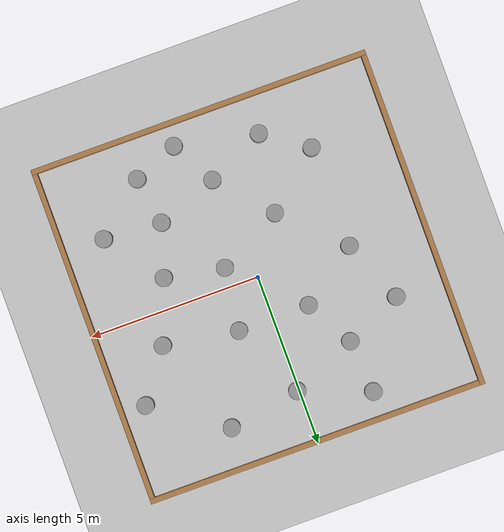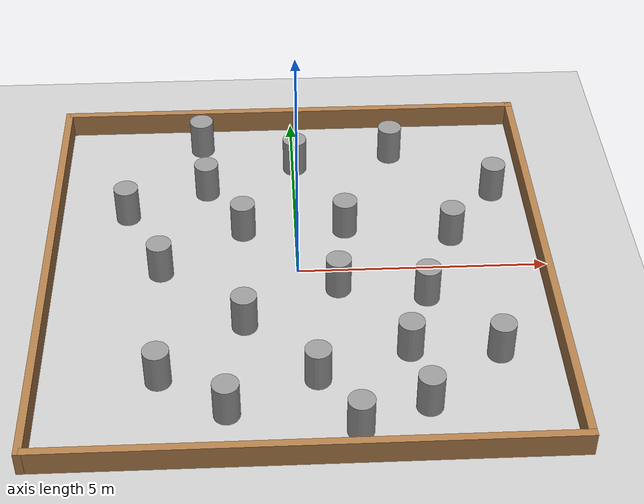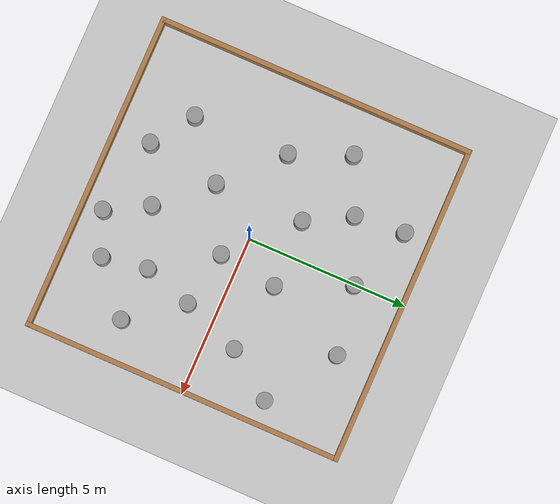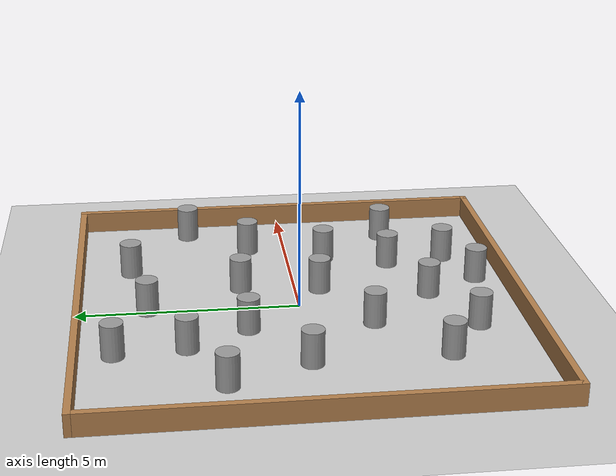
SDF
<sdf version="1.7">
 <world name="default">
  <light name="sun" type="directional">
   <pose>0 0 10 0 -0 0</pose>
   <diffuse>0.8 0.8 0.8 1</diffuse>
   <specular>0.2 0.2 0.2 1</specular>
   <attenuation>
    <range>1000</range>
    <constant>0.9</constant>
    <linear>0.01</linear>
    <quadratic>0.001</quadratic>
   </attenuation>
   <direction>-0.5 0.1 -0.9</direction>
   <spot><inner_angle>0</inner_angle><outer_angle>0</outer_angle><falloff>0</falloff></spot>
  </light>
  <model name="ground_plane">
   <static>1</static>
   <link name="link">
    <collision name="collision">
     <geometry><plane><normal>0 0 1</normal><size>100 100</size></plane></geometry>
     <surface>
      <contact><collide_bitmask>65535</collide_bitmask></contact>
      <friction><ode><mu>100</mu><mu2>50</mu2></ode></friction>
     </surface>
    </collision>
    <visual name="visual">
     <cast_shadows>0</cast_shadows>
     <geometry><plane><normal>0 0 1</normal><size>100 100</size></plane></geometry>
     <material>
      <script><uri>file://media/materials/scripts/gazebo.material</uri><name>Gazebo/Grey</name></script>
     </material>
    </visual>
   </link>
  </model>
  <gravity>0 0 -9.8</gravity>
  <magnetic_field>6e-06 2.3e-05 -4.2e-05</magnetic_field>
  <atmosphere type="adiabatic"/>
  <physics type="ode">
   <max_step_size>0.001</max_step_size>
   <real_time_factor>1</real_time_factor>
   <real_time_update_rate>1000</real_time_update_rate>
  </physics>
  <scene><ambient>0.4 0.4 0.4 1</ambient><background>0.7 0.7 0.7 1</background><shadows>1</shadows></scene>
  <audio><device>default</device></audio>
  <spherical_coordinates>
   <surface_model>EARTH_WGS84</surface_model>
   <latitude_deg>0</latitude_deg>
   <longitude_deg>0</longitude_deg>
   <elevation>0</elevation>
   <heading_deg>0</heading_deg>
  </spherical_coordinates>
  <model name="wall_square10x10">
   <pose>0 1.25 0 0 -0 0</pose>
   <link name="Wall_10">
    <collision name="Wall_10_Collision">
     <geometry><box><size>10 0.15 0.5</size></box></geometry>
     <pose>0 0 0.25 0 -0 0</pose>
    </collision>
    <visual name="Wall_10_Visual">
     <pose>0 0 0.25 0 -0 0</pose>
     <geometry><box><size>10 0.15 0.5</size></box></geometry>
     <material>
      <script><uri>file://media/materials/scripts/gazebo.material</uri><name>Gazebo/Wood</name></script>
      <ambient>1 1 1 1</ambient>
     </material>
     <meta><layer>0</layer></meta>
    </visual>
    <pose>0 -6.183 0 0 -0 3.14159</pose>
   </link>
   <link name="Wall_6">
    <collision name="Wall_6_Collision">
     <geometry><box><size>10 0.15 0.5</size></box></geometry>
     <pose>0 0 0.25 0 -0 0</pose>
    </collision>
    <visual name="Wall_6_Visual">
     <pose>0 0 0.25 0 -0 0</pose>
     <geometry><box><size>10 0.15 0.5</size></box></geometry>
     <material>
      <script><uri>file://media/materials/scripts/gazebo.material</uri><name>Gazebo/Wood</name></script>
      <ambient>1 1 1 1</ambient>
     </material>
     <meta><layer>0</layer></meta>
    </visual>
    <pose>-4.925 -1.258 0 0 -0 -1.5708</pose>
   </link>
   <link name="Wall_8">
    <collision name="Wall_8_Collision">
     <geometry><box><size>10 0.15 0.5</size></box></geometry>
     <pose>0 0 0.25 0 -0 0</pose>
    </collision>
    <visual name="Wall_8_Visual">
     <pose>0 0 0.25 0 -0 0</pose>
     <geometry><box><size>10 0.15 0.5</size></box></geometry>
     <material>
      <script><uri>file://media/materials/scripts/gazebo.material</uri><name>Gazebo/Wood</name></script>
      <ambient>1 1 1 1</ambient>
     </material>
     <meta><layer>0</layer></meta>
    </visual>
    <pose>0 3.667 0 0 -0 0</pose>
   </link>
   <link name="Wall_9">
    <collision name="Wall_9_Collision">
     <geometry><box><size>10 0.15 0.5</size></box></geometry>
     <pose>0 0 0.25 0 -0 0</pose>
    </collision>
    <visual name="Wall_9_Visual">
     <pose>0 0 0.25 0 -0 0</pose>
     <geometry><box><size>10 0.15 0.5</size></box></geometry>
     <material>
      <script><uri>file://media/materials/scripts/gazebo.material</uri><name>Gazebo/Wood</name></script>
      <ambient>1 1 1 1</ambient>
     </material>
     <meta><layer>0</layer></meta>
    </visual>
    <pose>4.925 -1.258 0 0 -0 -1.5708</pose>
   </link>
   <static>1</static>
  </model>
  <model name="unit_cylinder">
   <link name="link">
    <inertial>
     <mass>1</mass>
     <inertia><ixx>0.145833</ixx><ixy>0</ixy><ixz>0</ixz><iyy>0.145833</iyy><iyz>0</iyz><izz>0.125</izz></inertia>
    </inertial>
    <pose>0 -0 -0.1 0 -0 0</pose>
    <visual name="visual">
     <geometry><cylinder><radius>0.25</radius><length>0.8</length></cylinder></geometry>
     <material>
      <script><name>Gazebo/Grey</name><uri>file://media/materials/scripts/gazebo.material</uri></script>
      <shader type="pixel"><normal_map>__default__</normal_map></shader>
      <ambient>0.1 0.1 0.1 1</ambient>
      <diffuse>0.7 0.7 0.7 1</diffuse>
      <specular>0.01 0.01 0.01 1</specular>
      <emissive>0 0 0 1</emissive>
     </material>
    </visual>
    <collision name="collision">
     <geometry><cylinder><radius>0.25</radius><length>0.8</length></cylinder></geometry>
     <surface>
      <friction>
       <ode><mu>1</mu><mu2>1</mu2><fdir1>0 0 0</fdir1><slip1>0</slip1><slip2>0</slip2></ode>
       <torsional>
        <coefficient>1</coefficient>
        <patch_radius>0</patch_radius>
        <surface_radius>0</surface_radius>
        <use_patch_radius>1</use_patch_radius>
        <ode><slip>0</slip></ode>
       </torsional>
      </friction>
      <bounce><restitution_coefficient>0</restitution_coefficient><threshold>1e+06</threshold></bounce>
      <contact>
       <collide_without_contact>0</collide_without_contact>
       <collide_without_contact_bitmask>1</collide_without_contact_bitmask>
       <collide_bitmask>1</collide_bitmask>
       <ode>
        <soft_cfm>0</soft_cfm>
        <soft_erp>0.2</soft_erp>
        <kp>1e+13</kp>
        <kd>1</kd>
        <max_vel>0.01</max_vel>
        <min_depth>0</min_depth>
       </ode>
       <bullet>
        <split_impulse>1</split_impulse>
        <split_impulse_penetration_threshold>-0.01</split_impulse_penetration_threshold>
        <soft_cfm>0</soft_cfm>
        <soft_erp>0.2</soft_erp>
        <kp>1e+13</kp>
        <kd>1</kd>
       </bullet>
      </contact>
     </surface>
    </collision>
   </link>
   <static>0</static>
   <pose>-1.06223 -1.53507 0.499998 1e-06 1e-06 0</pose>
  </model>
  <model name="unit_cylinder_0">
   <link name="link">
    <inertial>
     <mass>1</mass>
     <inertia><ixx>0.145833</ixx><ixy>0</ixy><ixz>0</ixz><iyy>0.145833</iyy><iyz>0</iyz><izz>0.125</izz></inertia>
    </inertial>
    <pose>0 -0 -0.1 0 -0 0</pose>
    <visual name="visual">
     <geometry><cylinder><radius>0.25</radius><length>0.8</length></cylinder></geometry>
     <material>
      <script><name>Gazebo/Grey</name><uri>file://media/materials/scripts/gazebo.material</uri></script>
      <shader type="pixel"><normal_map>__default__</normal_map></shader>
      <ambient>0.1 0.1 0.1 1</ambient>
      <diffuse>0.7 0.7 0.7 1</diffuse>
      <specular>0.01 0.01 0.01 1</specular>
      <emissive>0 0 0 1</emissive>
     </material>
    </visual>
    <collision name="collision">
     <geometry><cylinder><radius>0.25</radius><length>0.8</length></cylinder></geometry>
     <surface>
      <friction>
       <ode><mu>1</mu><mu2>1</mu2><fdir1>0 0 0</fdir1><slip1>0</slip1><slip2>0</slip2></ode>
       <torsional>
        <coefficient>1</coefficient>
        <patch_radius>0</patch_radius>
        <surface_radius>0</surface_radius>
        <use_patch_radius>1</use_patch_radius>
        <ode><slip>0</slip></ode>
       </torsional>
      </friction>
      <bounce><restitution_coefficient>0</restitution_coefficient><threshold>1e+06</threshold></bounce>
      <contact>
       <collide_without_contact>0</collide_without_contact>
       <collide_without_contact_bitmask>1</collide_without_contact_bitmask>
       <collide_bitmask>1</collide_bitmask>
       <ode>
        <soft_cfm>0</soft_cfm>
        <soft_erp>0.2</soft_erp>
        <kp>1e+13</kp>
        <kd>1</kd>
        <max_vel>0.01</max_vel>
        <min_depth>0</min_depth>
       </ode>
       <bullet>
        <split_impulse>1</split_impulse>
        <split_impulse_penetration_threshold>-0.01</split_impulse_penetration_threshold>
        <soft_cfm>0</soft_cfm>
        <soft_erp>0.2</soft_erp>
        <kp>1e+13</kp>
        <kd>1</kd>
       </bullet>
      </contact>
     </surface>
    </collision>
   </link>
   <static>0</static>
   <pose>0.276075 -3.01056 0.499991 0 -0 0</pose>
  </model>
  <model name="unit_cylinder_1">
   <link name="link">
    <inertial>
     <mass>1</mass>
     <inertia><ixx>0.145833</ixx><ixy>0</ixy><ixz>0</ixz><iyy>0.145833</iyy><iyz>0</iyz><izz>0.125</izz></inertia>
    </inertial>
    <pose>0 -0 -0.1 0 -0 0</pose>
    <visual name="visual">
     <geometry><cylinder><radius>0.25</radius><length>0.8</length></cylinder></geometry>
     <material>
      <script><name>Gazebo/Grey</name><uri>file://media/materials/scripts/gazebo.material</uri></script>
      <shader type="pixel"><normal_map>__default__</normal_map></shader>
      <ambient>0.1 0.1 0.1 1</ambient>
      <diffuse>0.7 0.7 0.7 1</diffuse>
      <specular>0.01 0.01 0.01 1</specular>
      <emissive>0 0 0 1</emissive>
     </material>
    </visual>
    <collision name="collision">
     <geometry><cylinder><radius>0.25</radius><length>0.8</length></cylinder></geometry>
     <surface>
      <friction>
       <ode><mu>1</mu><mu2>1</mu2><fdir1>0 0 0</fdir1><slip1>0</slip1><slip2>0</slip2></ode>
       <torsional>
        <coefficient>1</coefficient>
        <patch_radius>0</patch_radius>
        <surface_radius>0</surface_radius>
        <use_patch_radius>1</use_patch_radius>
        <ode><slip>0</slip></ode>
       </torsional>
      </friction>
      <bounce><restitution_coefficient>0</restitution_coefficient><threshold>1e+06</threshold></bounce>
      <contact>
       <collide_without_contact>0</collide_without_contact>
       <collide_without_contact_bitmask>1</collide_without_contact_bitmask>
       <collide_bitmask>1</collide_bitmask>
       <ode>
        <soft_cfm>0</soft_cfm>
        <soft_erp>0.2</soft_erp>
        <kp>1e+13</kp>
        <kd>1</kd>
        <max_vel>0.01</max_vel>
        <min_depth>0</min_depth>
       </ode>
       <bullet>
        <split_impulse>1</split_impulse>
        <split_impulse_penetration_threshold>-0.01</split_impulse_penetration_threshold>
        <soft_cfm>0</soft_cfm>
        <soft_erp>0.2</soft_erp>
        <kp>1e+13</kp>
        <kd>1</kd>
       </bullet>
      </contact>
     </surface>
    </collision>
   </link>
   <static>0</static>
   <pose>-2.6561 -2.91617 0.5 0 -0 0</pose>
  </model>
  <model name="unit_cylinder_2">
   <link name="link">
    <inertial>
     <mass>1</mass>
     <inertia><ixx>0.145833</ixx><ixy>0</ixy><ixz>0</ixz><iyy>0.145833</iyy><iyz>0</iyz><izz>0.125</izz></inertia>
    </inertial>
    <pose>0 -0 -0.1 0 -0 0</pose>
    <visual name="visual">
     <geometry><cylinder><radius>0.25</radius><length>0.8</length></cylinder></geometry>
     <material>
      <script><name>Gazebo/Grey</name><uri>file://media/materials/scripts/gazebo.material</uri></script>
      <shader type="pixel"><normal_map>__default__</normal_map></shader>
      <ambient>0.1 0.1 0.1 1</ambient>
      <diffuse>0.7 0.7 0.7 1</diffuse>
      <specular>0.01 0.01 0.01 1</specular>
      <emissive>0 0 0 1</emissive>
     </material>
    </visual>
    <collision name="collision">
     <geometry><cylinder><radius>0.25</radius><length>0.8</length></cylinder></geometry>
     <surface>
      <friction>
       <ode><mu>1</mu><mu2>1</mu2><fdir1>0 0 0</fdir1><slip1>0</slip1><slip2>0</slip2></ode>
       <torsional>
        <coefficient>1</coefficient>
        <patch_radius>0</patch_radius>
        <surface_radius>0</surface_radius>
        <use_patch_radius>1</use_patch_radius>
        <ode><slip>0</slip></ode>
       </torsional>
      </friction>
      <bounce><restitution_coefficient>0</restitution_coefficient><threshold>1e+06</threshold></bounce>
      <contact>
       <collide_without_contact>0</collide_without_contact>
       <collide_without_contact_bitmask>1</collide_without_contact_bitmask>
       <collide_bitmask>1</collide_bitmask>
       <ode>
        <soft_cfm>0</soft_cfm>
        <soft_erp>0.2</soft_erp>
        <kp>1e+13</kp>
        <kd>1</kd>
        <max_vel>0.01</max_vel>
        <min_depth>0</min_depth>
       </ode>
       <bullet>
        <split_impulse>1</split_impulse>
        <split_impulse_penetration_threshold>-0.01</split_impulse_penetration_threshold>
        <soft_cfm>0</soft_cfm>
        <soft_erp>0.2</soft_erp>
        <kp>1e+13</kp>
        <kd>1</kd>
       </bullet>
      </contact>
     </surface>
    </collision>
   </link>
   <static>0</static>
   <pose>-2.72046 0.046948 0.499991 -0 -0 -0</pose>
  </model>
  <model name="unit_cylinder_3">
   <link name="link">
    <inertial>
     <mass>1</mass>
     <inertia><ixx>0.145833</ixx><ixy>0</ixy><ixz>0</ixz><iyy>0.145833</iyy><iyz>0</iyz><izz>0.125</izz></inertia>
    </inertial>
    <pose>0 -0 -0.1 0 -0 0</pose>
    <visual name="visual">
     <geometry><cylinder><radius>0.25</radius><length>0.8</length></cylinder></geometry>
     <material>
      <script><name>Gazebo/Grey</name><uri>file://media/materials/scripts/gazebo.material</uri></script>
      <shader type="pixel"><normal_map>__default__</normal_map></shader>
      <ambient>0.1 0.1 0.1 1</ambient>
      <diffuse>0.7 0.7 0.7 1</diffuse>
      <specular>0.01 0.01 0.01 1</specular>
      <emissive>0 0 0 1</emissive>
     </material>
    </visual>
    <collision name="collision">
     <geometry><cylinder><radius>0.25</radius><length>0.8</length></cylinder></geometry>
     <surface>
      <friction>
       <ode><mu>1</mu><mu2>1</mu2><fdir1>0 0 0</fdir1><slip1>0</slip1><slip2>0</slip2></ode>
       <torsional>
        <coefficient>1</coefficient>
        <patch_radius>0</patch_radius>
        <surface_radius>0</surface_radius>
        <use_patch_radius>1</use_patch_radius>
        <ode><slip>0</slip></ode>
       </torsional>
      </friction>
      <bounce><restitution_coefficient>0</restitution_coefficient><threshold>1e+06</threshold></bounce>
      <contact>
       <collide_without_contact>0</collide_without_contact>
       <collide_without_contact_bitmask>1</collide_without_contact_bitmask>
       <collide_bitmask>1</collide_bitmask>
       <ode>
        <soft_cfm>0</soft_cfm>
        <soft_erp>0.2</soft_erp>
        <kp>1e+13</kp>
        <kd>1</kd>
        <max_vel>0.01</max_vel>
        <min_depth>0</min_depth>
       </ode>
       <bullet>
        <split_impulse>1</split_impulse>
        <split_impulse_penetration_threshold>-0.01</split_impulse_penetration_threshold>
        <soft_cfm>0</soft_cfm>
        <soft_erp>0.2</soft_erp>
        <kp>1e+13</kp>
        <kd>1</kd>
       </bullet>
      </contact>
     </surface>
    </collision>
   </link>
   <static>0</static>
   <pose>-1.83041 2.57714 0.5 0 -0 0</pose>
  </model>
  <model name="unit_cylinder_4">
   <link name="link">
    <inertial>
     <mass>1</mass>
     <inertia><ixx>0.145833</ixx><ixy>0</ixy><ixz>0</ixz><iyy>0.145833</iyy><iyz>0</iyz><izz>0.125</izz></inertia>
    </inertial>
    <pose>0 -0 -0.1 0 -0 0</pose>
    <visual name="visual">
     <geometry><cylinder><radius>0.25</radius><length>0.8</length></cylinder></geometry>
     <material>
      <script><name>Gazebo/Grey</name><uri>file://media/materials/scripts/gazebo.material</uri></script>
      <shader type="pixel"><normal_map>__default__</normal_map></shader>
      <ambient>0.1 0.1 0.1 1</ambient>
      <diffuse>0.7 0.7 0.7 1</diffuse>
      <specular>0.01 0.01 0.01 1</specular>
      <emissive>0 0 0 1</emissive>
     </material>
    </visual>
    <collision name="collision">
     <geometry><cylinder><radius>0.25</radius><length>0.8</length></cylinder></geometry>
     <surface>
      <friction>
       <ode><mu>1</mu><mu2>1</mu2><fdir1>0 0 0</fdir1><slip1>0</slip1><slip2>0</slip2></ode>
       <torsional>
        <coefficient>1</coefficient>
        <patch_radius>0</patch_radius>
        <surface_radius>0</surface_radius>
        <use_patch_radius>1</use_patch_radius>
        <ode><slip>0</slip></ode>
       </torsional>
      </friction>
      <bounce><restitution_coefficient>0</restitution_coefficient><threshold>1e+06</threshold></bounce>
      <contact>
       <collide_without_contact>0</collide_without_contact>
       <collide_without_contact_bitmask>1</collide_without_contact_bitmask>
       <collide_bitmask>1</collide_bitmask>
       <ode>
        <soft_cfm>0</soft_cfm>
        <soft_erp>0.2</soft_erp>
        <kp>1e+13</kp>
        <kd>1</kd>
        <max_vel>0.01</max_vel>
        <min_depth>0</min_depth>
       </ode>
       <bullet>
        <split_impulse>1</split_impulse>
        <split_impulse_penetration_threshold>-0.01</split_impulse_penetration_threshold>
        <soft_cfm>0</soft_cfm>
        <soft_erp>0.2</soft_erp>
        <kp>1e+13</kp>
        <kd>1</kd>
       </bullet>
      </contact>
     </surface>
    </collision>
   </link>
   <static>0</static>
   <pose>-3.47115 1.83898 0.499991 -0 -0 -0</pose>
  </model>
  <model name="unit_cylinder_5">
   <link name="link">
    <inertial>
     <mass>1</mass>
     <inertia><ixx>0.145833</ixx><ixy>0</ixy><ixz>0</ixz><iyy>0.145833</iyy><iyz>0</iyz><izz>0.125</izz></inertia>
    </inertial>
    <pose>0 -0 -0.1 0 -0 0</pose>
    <visual name="visual">
     <geometry><cylinder><radius>0.25</radius><length>0.8</length></cylinder></geometry>
     <material>
      <script><name>Gazebo/Grey</name><uri>file://media/materials/scripts/gazebo.material</uri></script>
      <shader type="pixel"><normal_map>__default__</normal_map></shader>
      <ambient>0.1 0.1 0.1 1</ambient>
      <diffuse>0.7 0.7 0.7 1</diffuse>
      <specular>0.01 0.01 0.01 1</specular>
      <emissive>0 0 0 1</emissive>
     </material>
    </visual>
    <collision name="collision">
     <geometry><cylinder><radius>0.25</radius><length>0.8</length></cylinder></geometry>
     <surface>
      <friction>
       <ode><mu>1</mu><mu2>1</mu2><fdir1>0 0 0</fdir1><slip1>0</slip1><slip2>0</slip2></ode>
       <torsional>
        <coefficient>1</coefficient>
        <patch_radius>0</patch_radius>
        <surface_radius>0</surface_radius>
        <use_patch_radius>1</use_patch_radius>
        <ode><slip>0</slip></ode>
       </torsional>
      </friction>
      <bounce><restitution_coefficient>0</restitution_coefficient><threshold>1e+06</threshold></bounce>
      <contact>
       <collide_without_contact>0</collide_without_contact>
       <collide_without_contact_bitmask>1</collide_without_contact_bitmask>
       <collide_bitmask>1</collide_bitmask>
       <ode>
        <soft_cfm>0</soft_cfm>
        <soft_erp>0.2</soft_erp>
        <kp>1e+13</kp>
        <kd>1</kd>
        <max_vel>0.01</max_vel>
        <min_depth>0</min_depth>
       </ode>
       <bullet>
        <split_impulse>1</split_impulse>
        <split_impulse_penetration_threshold>-0.01</split_impulse_penetration_threshold>
        <soft_cfm>0</soft_cfm>
        <soft_erp>0.2</soft_erp>
        <kp>1e+13</kp>
        <kd>1</kd>
       </bullet>
      </contact>
     </surface>
    </collision>
   </link>
   <static>0</static>
   <pose>-1.07313 1.22337 0.5 0 -0 0</pose>
  </model>
  <model name="unit_cylinder_6">
   <link name="link">
    <inertial>
     <mass>1</mass>
     <inertia><ixx>0.145833</ixx><ixy>0</ixy><ixz>0</ixz><iyy>0.145833</iyy><iyz>0</iyz><izz>0.125</izz></inertia>
    </inertial>
    <pose>0 -0 -0.1 0 -0 0</pose>
    <visual name="visual">
     <geometry><cylinder><radius>0.25</radius><length>0.8</length></cylinder></geometry>
     <material>
      <script><name>Gazebo/Grey</name><uri>file://media/materials/scripts/gazebo.material</uri></script>
      <shader type="pixel"><normal_map>__default__</normal_map></shader>
      <ambient>0.1 0.1 0.1 1</ambient>
      <diffuse>0.7 0.7 0.7 1</diffuse>
      <specular>0.01 0.01 0.01 1</specular>
      <emissive>0 0 0 1</emissive>
     </material>
    </visual>
    <collision name="collision">
     <geometry><cylinder><radius>0.25</radius><length>0.8</length></cylinder></geometry>
     <surface>
      <friction>
       <ode><mu>1</mu><mu2>1</mu2><fdir1>0 0 0</fdir1><slip1>0</slip1><slip2>0</slip2></ode>
       <torsional>
        <coefficient>1</coefficient>
        <patch_radius>0</patch_radius>
        <surface_radius>0</surface_radius>
        <use_patch_radius>1</use_patch_radius>
        <ode><slip>0</slip></ode>
       </torsional>
      </friction>
      <bounce><restitution_coefficient>0</restitution_coefficient><threshold>1e+06</threshold></bounce>
      <contact>
       <collide_without_contact>0</collide_without_contact>
       <collide_without_contact_bitmask>1</collide_without_contact_bitmask>
       <collide_bitmask>1</collide_bitmask>
       <ode>
        <soft_cfm>0</soft_cfm>
        <soft_erp>0.2</soft_erp>
        <kp>1e+13</kp>
        <kd>1</kd>
        <max_vel>0.01</max_vel>
        <min_depth>0</min_depth>
       </ode>
       <bullet>
        <split_impulse>1</split_impulse>
        <split_impulse_penetration_threshold>-0.01</split_impulse_penetration_threshold>
        <soft_cfm>0</soft_cfm>
        <soft_erp>0.2</soft_erp>
        <kp>1e+13</kp>
        <kd>1</kd>
       </bullet>
      </contact>
     </surface>
    </collision>
   </link>
   <static>0</static>
   <pose>0.785044 -0.566432 0.499991 -0 -0 -0</pose>
  </model>
  <model name="unit_cylinder_7">
   <link name="link">
    <inertial>
     <mass>1</mass>
     <inertia><ixx>0.145833</ixx><ixy>0</ixy><ixz>0</ixz><iyy>0.145833</iyy><iyz>0</iyz><izz>0.125</izz></inertia>
    </inertial>
    <pose>0 -0 -0.1 0 -0 0</pose>
    <visual name="visual">
     <geometry><cylinder><radius>0.25</radius><length>0.8</length></cylinder></geometry>
     <material>
      <script><name>Gazebo/Grey</name><uri>file://media/materials/scripts/gazebo.material</uri></script>
      <shader type="pixel"><normal_map>__default__</normal_map></shader>
      <ambient>0.1 0.1 0.1 1</ambient>
      <diffuse>0.7 0.7 0.7 1</diffuse>
      <specular>0.01 0.01 0.01 1</specular>
      <emissive>0 0 0 1</emissive>
     </material>
    </visual>
    <collision name="collision">
     <geometry><cylinder><radius>0.25</radius><length>0.8</length></cylinder></geometry>
     <surface>
      <friction>
       <ode><mu>1</mu><mu2>1</mu2><fdir1>0 0 0</fdir1><slip1>0</slip1><slip2>0</slip2></ode>
       <torsional>
        <coefficient>1</coefficient>
        <patch_radius>0</patch_radius>
        <surface_radius>0</surface_radius>
        <use_patch_radius>1</use_patch_radius>
        <ode><slip>0</slip></ode>
       </torsional>
      </friction>
      <bounce><restitution_coefficient>0</restitution_coefficient><threshold>1e+06</threshold></bounce>
      <contact>
       <collide_without_contact>0</collide_without_contact>
       <collide_without_contact_bitmask>1</collide_without_contact_bitmask>
       <collide_bitmask>1</collide_bitmask>
       <ode>
        <soft_cfm>0</soft_cfm>
        <soft_erp>0.2</soft_erp>
        <kp>1e+13</kp>
        <kd>1</kd>
        <max_vel>0.01</max_vel>
        <min_depth>0</min_depth>
       </ode>
       <bullet>
        <split_impulse>1</split_impulse>
        <split_impulse_penetration_threshold>-0.01</split_impulse_penetration_threshold>
        <soft_cfm>0</soft_cfm>
        <soft_erp>0.2</soft_erp>
        <kp>1e+13</kp>
        <kd>1</kd>
       </bullet>
      </contact>
     </surface>
    </collision>
   </link>
   <static>0</static>
   <pose>1.01297 1.23248 0.5 0 -0 0</pose>
  </model>
  <model name="unit_cylinder_8">
   <link name="link">
    <inertial>
     <mass>1</mass>
     <inertia><ixx>0.145833</ixx><ixy>0</ixy><ixz>0</ixz><iyy>0.145833</iyy><iyz>0</iyz><izz>0.125</izz></inertia>
    </inertial>
    <pose>0 -0 -0.1 0 -0 0</pose>
    <visual name="visual">
     <geometry><cylinder><radius>0.25</radius><length>0.8</length></cylinder></geometry>
     <material>
      <script><name>Gazebo/Grey</name><uri>file://media/materials/scripts/gazebo.material</uri></script>
      <shader type="pixel"><normal_map>__default__</normal_map></shader>
      <ambient>0.1 0.1 0.1 1</ambient>
      <diffuse>0.7 0.7 0.7 1</diffuse>
      <specular>0.01 0.01 0.01 1</specular>
      <emissive>0 0 0 1</emissive>
     </material>
    </visual>
    <collision name="collision">
     <geometry><cylinder><radius>0.25</radius><length>0.8</length></cylinder></geometry>
     <surface>
      <friction>
       <ode><mu>1</mu><mu2>1</mu2><fdir1>0 0 0</fdir1><slip1>0</slip1><slip2>0</slip2></ode>
       <torsional>
        <coefficient>1</coefficient>
        <patch_radius>0</patch_radius>
        <surface_radius>0</surface_radius>
        <use_patch_radius>1</use_patch_radius>
        <ode><slip>0</slip></ode>
       </torsional>
      </friction>
      <bounce><restitution_coefficient>0</restitution_coefficient><threshold>1e+06</threshold></bounce>
      <contact>
       <collide_without_contact>0</collide_without_contact>
       <collide_without_contact_bitmask>1</collide_without_contact_bitmask>
       <collide_bitmask>1</collide_bitmask>
       <ode>
        <soft_cfm>0</soft_cfm>
        <soft_erp>0.2</soft_erp>
        <kp>1e+13</kp>
        <kd>1</kd>
        <max_vel>0.01</max_vel>
        <min_depth>0</min_depth>
       </ode>
       <bullet>
        <split_impulse>1</split_impulse>
        <split_impulse_penetration_threshold>-0.01</split_impulse_penetration_threshold>
        <soft_cfm>0</soft_cfm>
        <soft_erp>0.2</soft_erp>
        <kp>1e+13</kp>
        <kd>1</kd>
       </bullet>
      </contact>
     </surface>
    </collision>
   </link>
   <static>0</static>
   <pose>0.050606 3.38272 0.499991 -0 -0 -0</pose>
  </model>
  <model name="unit_cylinder_9">
   <link name="link">
    <inertial>
     <mass>1</mass>
     <inertia><ixx>0.145833</ixx><ixy>0</ixy><ixz>0</ixz><iyy>0.145833</iyy><iyz>0</iyz><izz>0.125</izz></inertia>
    </inertial>
    <pose>0 -0 -0.1 0 -0 0</pose>
    <visual name="visual">
     <geometry><cylinder><radius>0.25</radius><length>0.8</length></cylinder></geometry>
     <material>
      <script><name>Gazebo/Grey</name><uri>file://media/materials/scripts/gazebo.material</uri></script>
      <shader type="pixel"><normal_map>__default__</normal_map></shader>
      <ambient>0.1 0.1 0.1 1</ambient>
      <diffuse>0.7 0.7 0.7 1</diffuse>
      <specular>0.01 0.01 0.01 1</specular>
      <emissive>0 0 0 1</emissive>
     </material>
    </visual>
    <collision name="collision">
     <geometry><cylinder><radius>0.25</radius><length>0.8</length></cylinder></geometry>
     <surface>
      <friction>
       <ode><mu>1</mu><mu2>1</mu2><fdir1>0 0 0</fdir1><slip1>0</slip1><slip2>0</slip2></ode>
       <torsional>
        <coefficient>1</coefficient>
        <patch_radius>0</patch_radius>
        <surface_radius>0</surface_radius>
        <use_patch_radius>1</use_patch_radius>
        <ode><slip>0</slip></ode>
       </torsional>
      </friction>
      <bounce><restitution_coefficient>0</restitution_coefficient><threshold>1e+06</threshold></bounce>
      <contact>
       <collide_without_contact>0</collide_without_contact>
       <collide_without_contact_bitmask>1</collide_without_contact_bitmask>
       <collide_bitmask>1</collide_bitmask>
       <ode>
        <soft_cfm>0</soft_cfm>
        <soft_erp>0.2</soft_erp>
        <kp>1e+13</kp>
        <kd>1</kd>
        <max_vel>0.01</max_vel>
        <min_depth>0</min_depth>
       </ode>
       <bullet>
        <split_impulse>1</split_impulse>
        <split_impulse_penetration_threshold>-0.01</split_impulse_penetration_threshold>
        <soft_cfm>0</soft_cfm>
        <soft_erp>0.2</soft_erp>
        <kp>1e+13</kp>
        <kd>1</kd>
       </bullet>
      </contact>
     </surface>
    </collision>
   </link>
   <static>0</static>
   <pose>2.13462 3.7319 0.5 0 -0 0</pose>
  </model>
  <model name="unit_cylinder_10">
   <link name="link">
    <inertial>
     <mass>1</mass>
     <inertia><ixx>0.145833</ixx><ixy>0</ixy><ixz>0</ixz><iyy>0.145833</iyy><iyz>0</iyz><izz>0.125</izz></inertia>
    </inertial>
    <pose>0 -0 -0.1 0 -0 0</pose>
    <visual name="visual">
     <geometry><cylinder><radius>0.25</radius><length>0.8</length></cylinder></geometry>
     <material>
      <script><name>Gazebo/Grey</name><uri>file://media/materials/scripts/gazebo.material</uri></script>
      <shader type="pixel"><normal_map>__default__</normal_map></shader>
      <ambient>0.1 0.1 0.1 1</ambient>
      <diffuse>0.7 0.7 0.7 1</diffuse>
      <specular>0.01 0.01 0.01 1</specular>
      <emissive>0 0 0 1</emissive>
     </material>
    </visual>
    <collision name="collision">
     <geometry><cylinder><radius>0.25</radius><length>0.8</length></cylinder></geometry>
     <surface>
      <friction>
       <ode><mu>1</mu><mu2>1</mu2><fdir1>0 0 0</fdir1><slip1>0</slip1><slip2>0</slip2></ode>
       <torsional>
        <coefficient>1</coefficient>
        <patch_radius>0</patch_radius>
        <surface_radius>0</surface_radius>
        <use_patch_radius>1</use_patch_radius>
        <ode><slip>0</slip></ode>
       </torsional>
      </friction>
      <bounce><restitution_coefficient>0</restitution_coefficient><threshold>1e+06</threshold></bounce>
      <contact>
       <collide_without_contact>0</collide_without_contact>
       <collide_without_contact_bitmask>1</collide_without_contact_bitmask>
       <collide_bitmask>1</collide_bitmask>
       <ode>
        <soft_cfm>0</soft_cfm>
        <soft_erp>0.2</soft_erp>
        <kp>1e+13</kp>
        <kd>1</kd>
        <max_vel>0.01</max_vel>
        <min_depth>0</min_depth>
       </ode>
       <bullet>
        <split_impulse>1</split_impulse>
        <split_impulse_penetration_threshold>-0.01</split_impulse_penetration_threshold>
        <soft_cfm>0</soft_cfm>
        <soft_erp>0.2</soft_erp>
        <kp>1e+13</kp>
        <kd>1</kd>
       </bullet>
      </contact>
     </surface>
    </collision>
   </link>
   <static>0</static>
   <pose>2.03117 -2.36706 0.499991 -0 -0 -0</pose>
  </model>
  <model name="unit_cylinder_11">
   <link name="link">
    <inertial>
     <mass>1</mass>
     <inertia><ixx>0.145833</ixx><ixy>0</ixy><ixz>0</ixz><iyy>0.145833</iyy><iyz>0</iyz><izz>0.125</izz></inertia>
    </inertial>
    <pose>0 -0 -0.1 0 -0 0</pose>
    <visual name="visual">
     <geometry><cylinder><radius>0.25</radius><length>0.8</length></cylinder></geometry>
     <material>
      <script><name>Gazebo/Grey</name><uri>file://media/materials/scripts/gazebo.material</uri></script>
      <shader type="pixel"><normal_map>__default__</normal_map></shader>
      <ambient>0.1 0.1 0.1 1</ambient>
      <diffuse>0.7 0.7 0.7 1</diffuse>
      <specular>0.01 0.01 0.01 1</specular>
      <emissive>0 0 0 1</emissive>
     </material>
    </visual>
    <collision name="collision">
     <geometry><cylinder><radius>0.25</radius><length>0.8</length></cylinder></geometry>
     <surface>
      <friction>
       <ode><mu>1</mu><mu2>1</mu2><fdir1>0 0 0</fdir1><slip1>0</slip1><slip2>0</slip2></ode>
       <torsional>
        <coefficient>1</coefficient>
        <patch_radius>0</patch_radius>
        <surface_radius>0</surface_radius>
        <use_patch_radius>1</use_patch_radius>
        <ode><slip>0</slip></ode>
       </torsional>
      </friction>
      <bounce><restitution_coefficient>0</restitution_coefficient><threshold>1e+06</threshold></bounce>
      <contact>
       <collide_without_contact>0</collide_without_contact>
       <collide_without_contact_bitmask>1</collide_without_contact_bitmask>
       <collide_bitmask>1</collide_bitmask>
       <ode>
        <soft_cfm>0</soft_cfm>
        <soft_erp>0.2</soft_erp>
        <kp>1e+13</kp>
        <kd>1</kd>
        <max_vel>0.01</max_vel>
        <min_depth>0</min_depth>
       </ode>
       <bullet>
        <split_impulse>1</split_impulse>
        <split_impulse_penetration_threshold>-0.01</split_impulse_penetration_threshold>
        <soft_cfm>0</soft_cfm>
        <soft_erp>0.2</soft_erp>
        <kp>1e+13</kp>
        <kd>1</kd>
       </bullet>
      </contact>
     </surface>
    </collision>
   </link>
   <static>0</static>
   <pose>2.25632 -3.7529 0.5 0 -0 0</pose>
  </model>
  <model name="unit_cylinder_12">
   <link name="link">
    <inertial>
     <mass>1</mass>
     <inertia><ixx>0.145833</ixx><ixy>0</ixy><ixz>0</ixz><iyy>0.145833</iyy><iyz>0</iyz><izz>0.125</izz></inertia>
    </inertial>
    <pose>0 -0 -0.1 0 -0 0</pose>
    <visual name="visual">
     <geometry><cylinder><radius>0.25</radius><length>0.8</length></cylinder></geometry>
     <material>
      <script><name>Gazebo/Grey</name><uri>file://media/materials/scripts/gazebo.material</uri></script>
      <shader type="pixel"><normal_map>__default__</normal_map></shader>
      <ambient>0.1 0.1 0.1 1</ambient>
      <diffuse>0.7 0.7 0.7 1</diffuse>
      <specular>0.01 0.01 0.01 1</specular>
      <emissive>0 0 0 1</emissive>
     </material>
    </visual>
    <collision name="collision">
     <geometry><cylinder><radius>0.25</radius><length>0.8</length></cylinder></geometry>
     <surface>
      <friction>
       <ode><mu>1</mu><mu2>1</mu2><fdir1>0 0 0</fdir1><slip1>0</slip1><slip2>0</slip2></ode>
       <torsional>
        <coefficient>1</coefficient>
        <patch_radius>0</patch_radius>
        <surface_radius>0</surface_radius>
        <use_patch_radius>1</use_patch_radius>
        <ode><slip>0</slip></ode>
       </torsional>
      </friction>
      <bounce><restitution_coefficient>0</restitution_coefficient><threshold>1e+06</threshold></bounce>
      <contact>
       <collide_without_contact>0</collide_without_contact>
       <collide_without_contact_bitmask>1</collide_without_contact_bitmask>
       <collide_bitmask>1</collide_bitmask>
       <ode>
        <soft_cfm>0</soft_cfm>
        <soft_erp>0.2</soft_erp>
        <kp>1e+13</kp>
        <kd>1</kd>
        <max_vel>0.01</max_vel>
        <min_depth>0</min_depth>
       </ode>
       <bullet>
        <split_impulse>1</split_impulse>
        <split_impulse_penetration_threshold>-0.01</split_impulse_penetration_threshold>
        <soft_cfm>0</soft_cfm>
        <soft_erp>0.2</soft_erp>
        <kp>1e+13</kp>
        <kd>1</kd>
       </bullet>
      </contact>
     </surface>
    </collision>
   </link>
   <static>0</static>
   <pose>3.71402 -2.48355 0.499991 -0 -0 -0</pose>
  </model>
  <model name="unit_cylinder_13">
   <link name="link">
    <inertial>
     <mass>1</mass>
     <inertia><ixx>0.145833</ixx><ixy>0</ixy><ixz>0</ixz><iyy>0.145833</iyy><iyz>0</iyz><izz>0.125</izz></inertia>
    </inertial>
    <pose>0 -0 -0.1 0 -0 0</pose>
    <visual name="visual">
     <geometry><cylinder><radius>0.25</radius><length>0.8</length></cylinder></geometry>
     <material>
      <script><name>Gazebo/Grey</name><uri>file://media/materials/scripts/gazebo.material</uri></script>
      <shader type="pixel"><normal_map>__default__</normal_map></shader>
      <ambient>0.1 0.1 0.1 1</ambient>
      <diffuse>0.7 0.7 0.7 1</diffuse>
      <specular>0.01 0.01 0.01 1</specular>
      <emissive>0 0 0 1</emissive>
     </material>
    </visual>
    <collision name="collision">
     <geometry><cylinder><radius>0.25</radius><length>0.8</length></cylinder></geometry>
     <surface>
      <friction>
       <ode><mu>1</mu><mu2>1</mu2><fdir1>0 0 0</fdir1><slip1>0</slip1><slip2>0</slip2></ode>
       <torsional>
        <coefficient>1</coefficient>
        <patch_radius>0</patch_radius>
        <surface_radius>0</surface_radius>
        <use_patch_radius>1</use_patch_radius>
        <ode><slip>0</slip></ode>
       </torsional>
      </friction>
      <bounce><restitution_coefficient>0</restitution_coefficient><threshold>1e+06</threshold></bounce>
      <contact>
       <collide_without_contact>0</collide_without_contact>
       <collide_without_contact_bitmask>1</collide_without_contact_bitmask>
       <collide_bitmask>1</collide_bitmask>
       <ode>
        <soft_cfm>0</soft_cfm>
        <soft_erp>0.2</soft_erp>
        <kp>1e+13</kp>
        <kd>1</kd>
        <max_vel>0.01</max_vel>
        <min_depth>0</min_depth>
       </ode>
       <bullet>
        <split_impulse>1</split_impulse>
        <split_impulse_penetration_threshold>-0.01</split_impulse_penetration_threshold>
        <soft_cfm>0</soft_cfm>
        <soft_erp>0.2</soft_erp>
        <kp>1e+13</kp>
        <kd>1</kd>
       </bullet>
      </contact>
     </surface>
    </collision>
   </link>
   <static>0</static>
   <pose>2.5 -0.882523 0.499991 0 -0 0</pose>
  </model>
  <model name="unit_cylinder_14">
   <link name="link">
    <inertial>
     <mass>1</mass>
     <inertia><ixx>0.145833</ixx><ixy>0</ixy><ixz>0</ixz><iyy>0.145833</iyy><iyz>0</iyz><izz>0.125</izz></inertia>
    </inertial>
    <pose>0 -0 -0.1 0 -0 0</pose>
    <visual name="visual">
     <geometry><cylinder><radius>0.25</radius><length>0.8</length></cylinder></geometry>
     <material>
      <script><name>Gazebo/Grey</name><uri>file://media/materials/scripts/gazebo.material</uri></script>
      <shader type="pixel"><normal_map>__default__</normal_map></shader>
      <ambient>0.1 0.1 0.1 1</ambient>
      <diffuse>0.7 0.7 0.7 1</diffuse>
      <specular>0.01 0.01 0.01 1</specular>
      <emissive>0 0 0 1</emissive>
     </material>
    </visual>
    <collision name="collision">
     <geometry><cylinder><radius>0.25</radius><length>0.8</length></cylinder></geometry>
     <surface>
      <friction>
       <ode><mu>1</mu><mu2>1</mu2><fdir1>0 0 0</fdir1><slip1>0</slip1><slip2>0</slip2></ode>
       <torsional>
        <coefficient>1</coefficient>
        <patch_radius>0</patch_radius>
        <surface_radius>0</surface_radius>
        <use_patch_radius>1</use_patch_radius>
        <ode><slip>0</slip></ode>
       </torsional>
      </friction>
      <bounce><restitution_coefficient>0</restitution_coefficient><threshold>1e+06</threshold></bounce>
      <contact>
       <collide_without_contact>0</collide_without_contact>
       <collide_without_contact_bitmask>1</collide_without_contact_bitmask>
       <collide_bitmask>1</collide_bitmask>
       <ode>
        <soft_cfm>0</soft_cfm>
        <soft_erp>0.2</soft_erp>
        <kp>1e+13</kp>
        <kd>1</kd>
        <max_vel>0.01</max_vel>
        <min_depth>0</min_depth>
       </ode>
       <bullet>
        <split_impulse>1</split_impulse>
        <split_impulse_penetration_threshold>-0.01</split_impulse_penetration_threshold>
        <soft_cfm>0</soft_cfm>
        <soft_erp>0.2</soft_erp>
        <kp>1e+13</kp>
        <kd>1</kd>
       </bullet>
      </contact>
     </surface>
    </collision>
   </link>
   <static>0</static>
   <pose>3.17431 0.897902 0.499991 -0 -0 -0</pose>
  </model>
  <model name="unit_cylinder_15">
   <link name="link">
    <inertial>
     <mass>1</mass>
     <inertia><ixx>0.145833</ixx><ixy>0</ixy><ixz>0</ixz><iyy>0.145833</iyy><iyz>0</iyz><izz>0.125</izz></inertia>
    </inertial>
    <pose>0 -0 -0.1 0 -0 0</pose>
    <visual name="visual">
     <geometry><cylinder><radius>0.25</radius><length>0.8</length></cylinder></geometry>
     <material>
      <script><name>Gazebo/Grey</name><uri>file://media/materials/scripts/gazebo.material</uri></script>
      <shader type="pixel"><normal_map>__default__</normal_map></shader>
      <ambient>0.1 0.1 0.1 1</ambient>
      <diffuse>0.7 0.7 0.7 1</diffuse>
      <specular>0.01 0.01 0.01 1</specular>
      <emissive>0 0 0 1</emissive>
     </material>
    </visual>
    <collision name="collision">
     <geometry><cylinder><radius>0.25</radius><length>0.8</length></cylinder></geometry>
     <surface>
      <friction>
       <ode><mu>1</mu><mu2>1</mu2><fdir1>0 0 0</fdir1><slip1>0</slip1><slip2>0</slip2></ode>
       <torsional>
        <coefficient>1</coefficient>
        <patch_radius>0</patch_radius>
        <surface_radius>0</surface_radius>
        <use_patch_radius>1</use_patch_radius>
        <ode><slip>0</slip></ode>
       </torsional>
      </friction>
      <bounce><restitution_coefficient>0</restitution_coefficient><threshold>1e+06</threshold></bounce>
      <contact>
       <collide_without_contact>0</collide_without_contact>
       <collide_without_contact_bitmask>1</collide_without_contact_bitmask>
       <collide_bitmask>1</collide_bitmask>
       <ode>
        <soft_cfm>0</soft_cfm>
        <soft_erp>0.2</soft_erp>
        <kp>1e+13</kp>
        <kd>1</kd>
        <max_vel>0.01</max_vel>
        <min_depth>0</min_depth>
       </ode>
       <bullet>
        <split_impulse>1</split_impulse>
        <split_impulse_penetration_threshold>-0.01</split_impulse_penetration_threshold>
        <soft_cfm>0</soft_cfm>
        <soft_erp>0.2</soft_erp>
        <kp>1e+13</kp>
        <kd>1</kd>
       </bullet>
      </contact>
     </surface>
    </collision>
   </link>
   <static>0</static>
   <pose>0.974429 -4.27563 0.499999 0 -0 0</pose>
  </model>
  <model name="unit_cylinder_16">
   <link name="link">
    <inertial>
     <mass>1</mass>
     <inertia><ixx>0.145833</ixx><ixy>0</ixy><ixz>0</ixz><iyy>0.145833</iyy><iyz>0</iyz><izz>0.125</izz></inertia>
    </inertial>
    <pose>0 -0 -0.1 0 -0 0</pose>
    <visual name="visual">
     <geometry><cylinder><radius>0.25</radius><length>0.8</length></cylinder></geometry>
     <material>
      <script><name>Gazebo/Grey</name><uri>file://media/materials/scripts/gazebo.material</uri></script>
      <shader type="pixel"><normal_map>__default__</normal_map></shader>
      <ambient>0.1 0.1 0.1 1</ambient>
      <diffuse>0.7 0.7 0.7 1</diffuse>
      <specular>0.01 0.01 0.01 1</specular>
      <emissive>0 0 0 1</emissive>
     </material>
    </visual>
    <collision name="collision">
     <geometry><cylinder><radius>0.25</radius><length>0.8</length></cylinder></geometry>
     <surface>
      <friction>
       <ode><mu>1</mu><mu2>1</mu2><fdir1>0 0 0</fdir1><slip1>0</slip1><slip2>0</slip2></ode>
       <torsional>
        <coefficient>1</coefficient>
        <patch_radius>0</patch_radius>
        <surface_radius>0</surface_radius>
        <use_patch_radius>1</use_patch_radius>
        <ode><slip>0</slip></ode>
       </torsional>
      </friction>
      <bounce><restitution_coefficient>0</restitution_coefficient><threshold>1e+06</threshold></bounce>
      <contact>
       <collide_without_contact>0</collide_without_contact>
       <collide_without_contact_bitmask>1</collide_without_contact_bitmask>
       <collide_bitmask>1</collide_bitmask>
       <ode>
        <soft_cfm>0</soft_cfm>
        <soft_erp>0.2</soft_erp>
        <kp>1e+13</kp>
        <kd>1</kd>
        <max_vel>0.01</max_vel>
        <min_depth>0</min_depth>
       </ode>
       <bullet>
        <split_impulse>1</split_impulse>
        <split_impulse_penetration_threshold>-0.01</split_impulse_penetration_threshold>
        <soft_cfm>0</soft_cfm>
        <soft_erp>0.2</soft_erp>
        <kp>1e+13</kp>
        <kd>1</kd>
       </bullet>
      </contact>
     </surface>
    </collision>
   </link>
   <static>0</static>
   <pose>-1.39426 -3.793 0.499991 -0 -0 -0</pose>
  </model>
  <model name="unit_cylinder_17">
   <link name="link">
    <inertial>
     <mass>1</mass>
     <inertia><ixx>0.145833</ixx><ixy>0</ixy><ixz>0</ixz><iyy>0.145833</iyy><iyz>0</iyz><izz>0.125</izz></inertia>
    </inertial>
    <pose>0 -0 -0.1 0 -0 0</pose>
    <visual name="visual">
     <geometry><cylinder><radius>0.25</radius><length>0.8</length></cylinder></geometry>
     <material>
      <script><name>Gazebo/Grey</name><uri>file://media/materials/scripts/gazebo.material</uri></script>
      <shader type="pixel"><normal_map>__default__</normal_map></shader>
      <ambient>0.1 0.1 0.1 1</ambient>
      <diffuse>0.7 0.7 0.7 1</diffuse>
      <specular>0.01 0.01 0.01 1</specular>
      <emissive>0 0 0 1</emissive>
     </material>
    </visual>
    <collision name="collision">
     <geometry><cylinder><radius>0.25</radius><length>0.8</length></cylinder></geometry>
     <surface>
      <friction>
       <ode><mu>1</mu><mu2>1</mu2><fdir1>0 0 0</fdir1><slip1>0</slip1><slip2>0</slip2></ode>
       <torsional>
        <coefficient>1</coefficient>
        <patch_radius>0</patch_radius>
        <surface_radius>0</surface_radius>
        <use_patch_radius>1</use_patch_radius>
        <ode><slip>0</slip></ode>
       </torsional>
      </friction>
      <bounce><restitution_coefficient>0</restitution_coefficient><threshold>1e+06</threshold></bounce>
      <contact>
       <collide_without_contact>0</collide_without_contact>
       <collide_without_contact_bitmask>1</collide_without_contact_bitmask>
       <collide_bitmask>1</collide_bitmask>
       <ode>
        <soft_cfm>0</soft_cfm>
        <soft_erp>0.2</soft_erp>
        <kp>1e+13</kp>
        <kd>1</kd>
        <max_vel>0.01</max_vel>
        <min_depth>0</min_depth>
       </ode>
       <bullet>
        <split_impulse>1</split_impulse>
        <split_impulse_penetration_threshold>-0.01</split_impulse_penetration_threshold>
        <soft_cfm>0</soft_cfm>
        <soft_erp>0.2</soft_erp>
        <kp>1e+13</kp>
        <kd>1</kd>
       </bullet>
      </contact>
     </surface>
    </collision>
   </link>
   <static>0</static>
   <pose>4.20098 2.31499 0.499999 0 -0 0</pose>
  </model>
  <model name="unit_cylinder_18">
   <link name="link">
    <inertial>
     <mass>1</mass>
     <inertia><ixx>0.145833</ixx><ixy>0</ixy><ixz>0</ixz><iyy>0.145833</iyy><iyz>0</iyz><izz>0.125</izz></inertia>
    </inertial>
    <pose>0 -0 -0.1 0 -0 0</pose>
    <visual name="visual">
     <geometry><cylinder><radius>0.25</radius><length>0.8</length></cylinder></geometry>
     <material>
      <script><name>Gazebo/Grey</name><uri>file://media/materials/scripts/gazebo.material</uri></script>
      <shader type="pixel"><normal_map>__default__</normal_map></shader>
      <ambient>0.1 0.1 0.1 1</ambient>
      <diffuse>0.7 0.7 0.7 1</diffuse>
      <specular>0.01 0.01 0.01 1</specular>
      <emissive>0 0 0 1</emissive>
     </material>
    </visual>
    <collision name="collision">
     <geometry><cylinder><radius>0.25</radius><length>0.8</length></cylinder></geometry>
     <surface>
      <friction>
       <ode><mu>1</mu><mu2>1</mu2><fdir1>0 0 0</fdir1><slip1>0</slip1><slip2>0</slip2></ode>
       <torsional>
        <coefficient>1</coefficient>
        <patch_radius>0</patch_radius>
        <surface_radius>0</surface_radius>
        <use_patch_radius>1</use_patch_radius>
        <ode><slip>0</slip></ode>
       </torsional>
      </friction>
      <bounce><restitution_coefficient>0</restitution_coefficient><threshold>1e+06</threshold></bounce>
      <contact>
       <collide_without_contact>0</collide_without_contact>
       <collide_without_contact_bitmask>1</collide_without_contact_bitmask>
       <collide_bitmask>1</collide_bitmask>
       <ode>
        <soft_cfm>0</soft_cfm>
        <soft_erp>0.2</soft_erp>
        <kp>1e+13</kp>
        <kd>1</kd>
        <max_vel>0.01</max_vel>
        <min_depth>0</min_depth>
       </ode>
       <bullet>
        <split_impulse>1</split_impulse>
        <split_impulse_penetration_threshold>-0.01</split_impulse_penetration_threshold>
        <soft_cfm>0</soft_cfm>
        <soft_erp>0.2</soft_erp>
        <kp>1e+13</kp>
        <kd>1</kd>
       </bullet>
      </contact>
     </surface>
    </collision>
   </link>
   <static>0</static>
   <pose>-1.95702 4.12853 0.499991 -0 -0 -0</pose>
  </model>
 </world>
</sdf>
